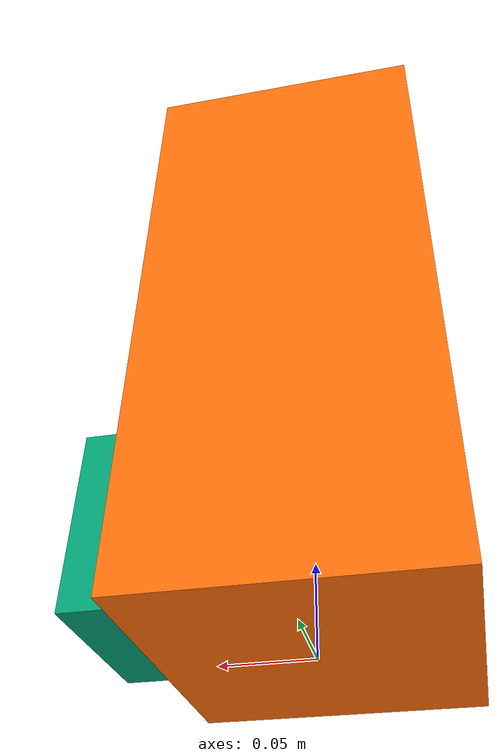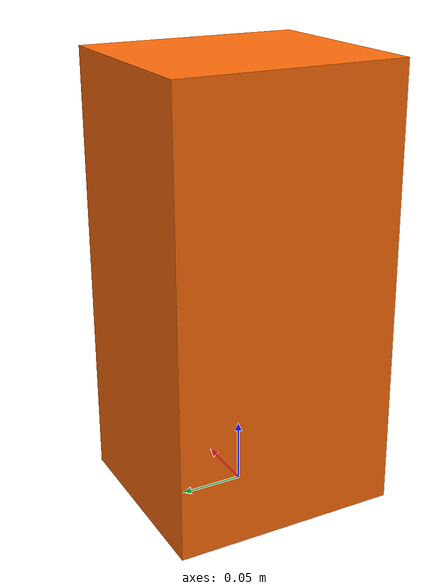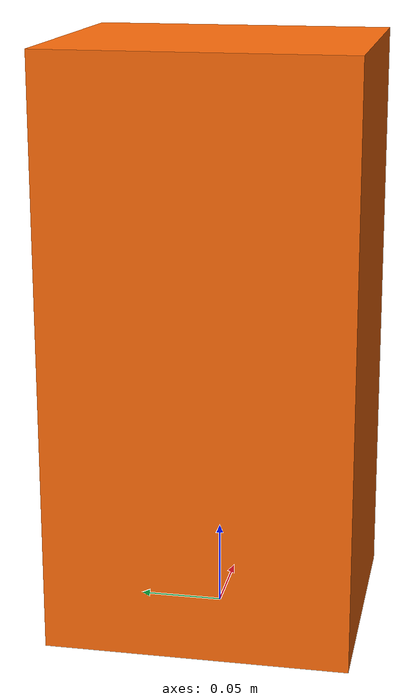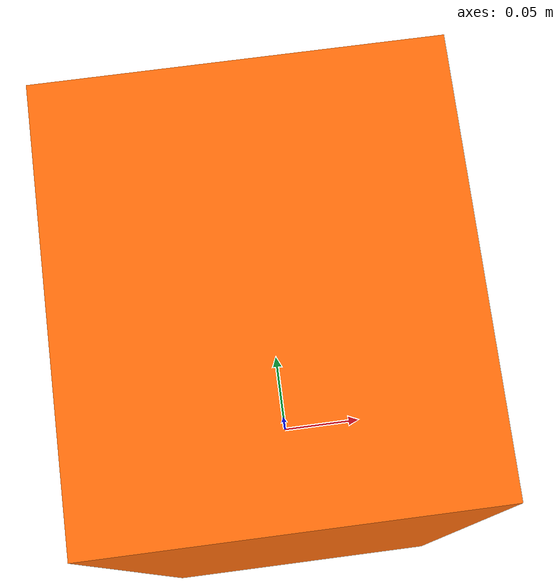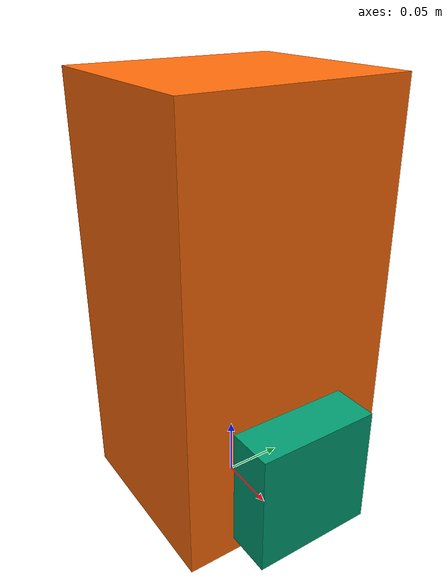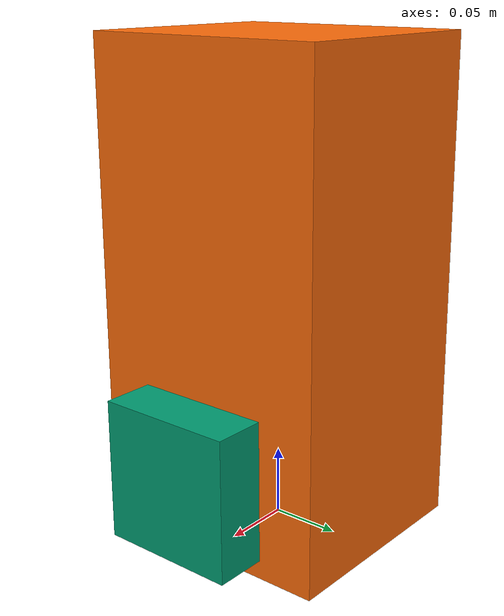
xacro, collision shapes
<?xml version="1.0"?>
<!-- based on: https://github.com/ros-simulation/gazebo_ros_demos/blob/kinetic-devel/rrbot_description/urdf/rrbot.xacro -->
<robot name="crash" xmlns:xacro="http://www.ros.org/wiki/xacro">

  <!-- Constants for robot dimensions -->
  <xacro:property name="PI" value="3.1415926535897931"/>

  <xacro:property name="mass" value="7.2" /> <!-- arbitrary value for mass -->
  <xacro:property name="width" value="0.18" />
  <xacro:property name="length" value="0.16" />
  <xacro:property name="height" value="0.35" />

  <xacro:property name="wheel_diam" value="0.064" />
  <xacro:property name="wheel_dist" value="0.15" />
  <xacro:property name="wheel_length" value="0.015" />

  <!-- Size of square 'camera' box -->
  <xacro:property name="axel_offset" value="0.05" /> <!-- Space btw top of beam and the each joint -->

  <!-- Import all Gazebo-customization elements, including Gazebo colors -->
  <xacro:include filename="$(find crtbot_description)/urdf/crash.gazebo" />
  <!-- Import Rviz colors -->
  <xacro:include filename="$(find crtbot_description)/urdf/materials.xacro" />

  <!-- Used for fixing robot to Gazebo 'base_link' -->
  <link name="base_link"/>

  <joint name="fixed" type="fixed">
    <parent link="base_link"/>
    <child link="main_body"/>
  </joint>

  <!-- Base Link -->
  <link name="main_body">
    <collision>
      <origin xyz="0 0 ${height/2}" rpy="0 0 0"/>
      <geometry>
         <box size="${length} ${width} ${height}"/>
      </geometry>
    </collision>

    <visual>
      <origin xyz="0 0 0" rpy="0 0 0"/>
      <geometry>
	       <mesh filename="package://crtbot_description/meshes/crash.dae"/>
      </geometry>
      <material name="orange"/>
    </visual>

    <inertial>
      <origin xyz="0 0 ${height/2}" rpy="0 0 0"/>
      <mass value="${mass}"/>
      <inertia
	  ixx="${mass / 12.0 * (width*width + height*height)}" ixy="0.0" ixz="0.0"
	  iyy="${mass / 12.0 * (height*height + width*width)}" iyz="0.0"
	  izz="${mass / 12.0 * (width*width + width*width)}"/>
    </inertial>
  </link>

  <joint name="hokuyo_joint" type="fixed">
    <axis xyz="0 1 0" />
    <origin xyz="0.067 -0.0015 0.063" rpy="${PI} 0 0"/>
    <parent link="main_body"/>
    <child link="hokuyo_link"/>
  </joint>

  <!-- Hokuyo Laser -->
  <link name="hokuyo_link">
    <collision>
      <origin xyz="0 0 0" rpy="0 0 0"/>
      <geometry>
	       <box size="0.1 0.1 0.1"/>
      </geometry>
    </collision>

    <visual>
      <origin xyz="0 0 0" rpy="0 0 0"/>
      <geometry>
        <mesh filename="package://crtbot_description/meshes/hokuyo.dae"/>
      </geometry>
    </visual>

    <inertial>
      <mass value="1e-5" />
      <origin xyz="0 0 0" rpy="0 0 0"/>
      <inertia ixx="1e-6" ixy="0" ixz="0" iyy="1e-6" iyz="0" izz="1e-6" />
    </inertial>
  </link>

  <link name="wheel_l_link">
    <visual>
      <origin rpy="${PI/2} 0 0" xyz="0 0 0"/>
      <geometry>
        <cylinder length="${wheel_length}" radius="${wheel_diam/2}"/>
      </geometry>
      <material name="black"/>
    </visual>
    <collision>
      <geometry>
        <cylinder length="${wheel_length}" radius="${wheel_diam/2}"/>
      </geometry>
      <origin rpy="${PI/2} 0 0" xyz="0 0 0"/>
    </collision>
  </link>

  <link name="wheel_r_link">
    <visual>
      <origin rpy="${PI/2} 0 0" xyz="0 0 0"/>
      <geometry>
        <cylinder length="${wheel_length}" radius="${wheel_diam/2}"/>
      </geometry>
      <material name="black"/>
    </visual>
    <collision>
      <geometry>
        <cylinder length="${wheel_length}" radius="${wheel_diam/2}"/>
      </geometry>
      <origin rpy="${PI/2} 0 0" xyz="0 0 0"/>
    </collision>
  </link>

  <joint name="wheel_l_joint" type="continuous">
    <axis rpy="0 0 0" xyz="0 1 0"/>
    <parent link="base_link"/>
    <child link="wheel_l_link"/>
    <origin rpy="0 0 0" xyz="0 -${wheel_dist/2} ${wheel_diam/2}"/>
  </joint>

  <joint name="wheel_r_joint" type="continuous">
    <axis rpy="0 0 0" xyz="0 1 0"/>
    <parent link="base_link"/>
    <child link="wheel_r_link"/>
    <origin rpy="0 0 0" xyz="0 ${wheel_dist/2} ${wheel_diam/2}"/>
  </joint>

  <transmission name="wheel_l_trans">
    <type>transmission_interface/SimpleTransmission</type>
    <joint name="wheel_l_joint">
      <hardwareInterface>VelocityJointInterface</hardwareInterface>
    </joint>
    <actuator name="motor_l">
      <hardwareInterface>VelocityJointInterface</hardwareInterface>
      <mechanicalReduction>1</mechanicalReduction>
    </actuator>
  </transmission>

  <transmission name="wheel_r_trans">
    <type>transmission_interface/SimpleTransmission</type>
    <joint name="wheel_r_joint">
      <hardwareInterface>VelocityJointInterface</hardwareInterface>
    </joint>
    <actuator name="motor_r">
      <hardwareInterface>VelocityJointInterface</hardwareInterface>
      <mechanicalReduction>1</mechanicalReduction>
    </actuator>
  </transmission>

</robot>

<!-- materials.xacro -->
<!-- source: https://github.com/ros-simulation/gazebo_ros_demos/blob/kinetic-devel/rrbot_description/urdf/materials.xacro -->
<robot>

  <material name="black">
    <color rgba="0.0 0.0 0.0 1.0"/>
  </material>

  <material name="blue">
    <color rgba="0.0 0.0 0.8 1.0"/>
  </material>

  <material name="green">
    <color rgba="0.0 0.8 0.0 1.0"/>
  </material>

  <material name="grey">
    <color rgba="0.2 0.2 0.2 1.0"/>
  </material>

  <material name="orange">
    <color rgba="${255/255} ${108/255} ${10/255} 1.0"/>
  </material>

  <material name="brown">
    <color rgba="${222/255} ${207/255} ${195/255} 1.0"/>
  </material>

  <material name="red">
    <color rgba="0.8 0.0 0.0 1.0"/>
  </material>

  <material name="white">
    <color rgba="1.0 1.0 1.0 1.0"/>
  </material>

</robot>
